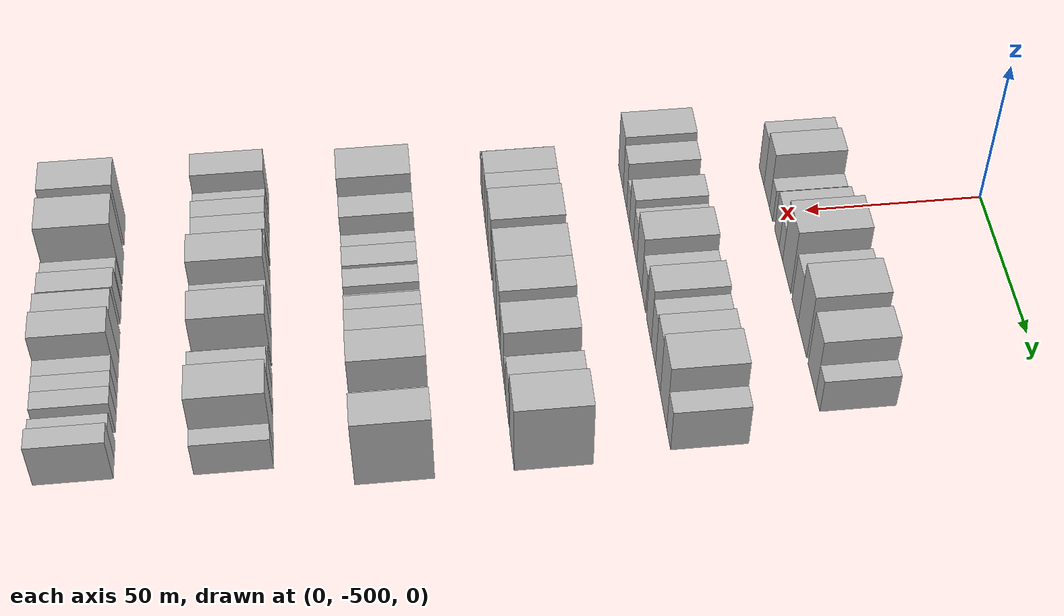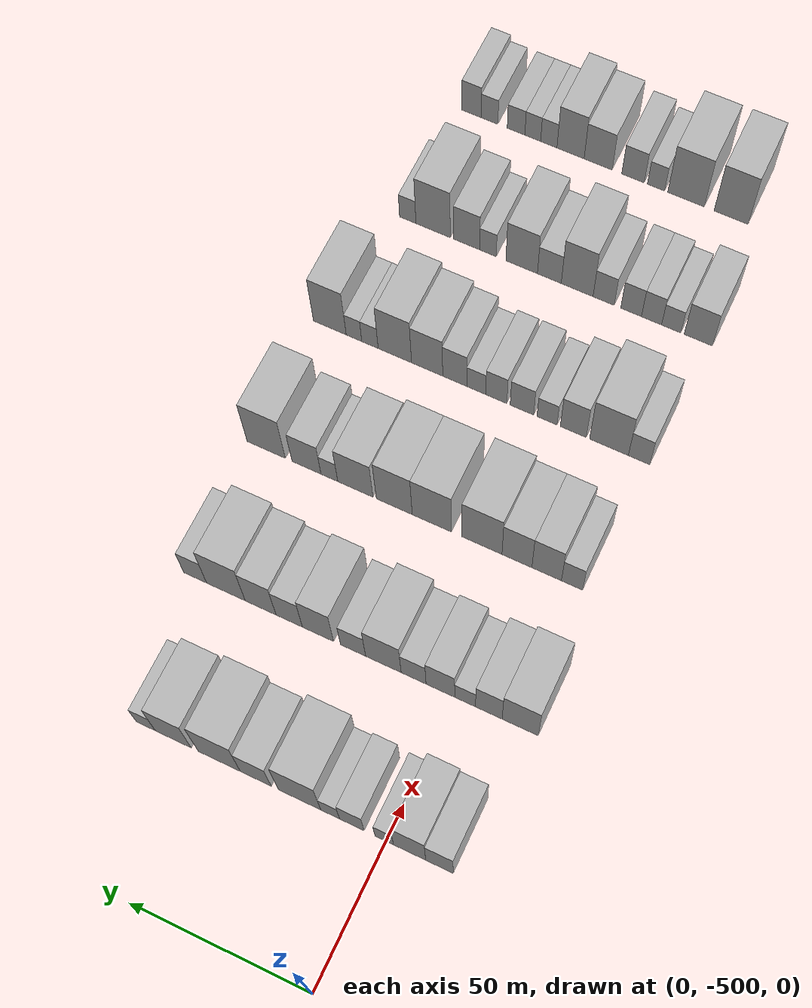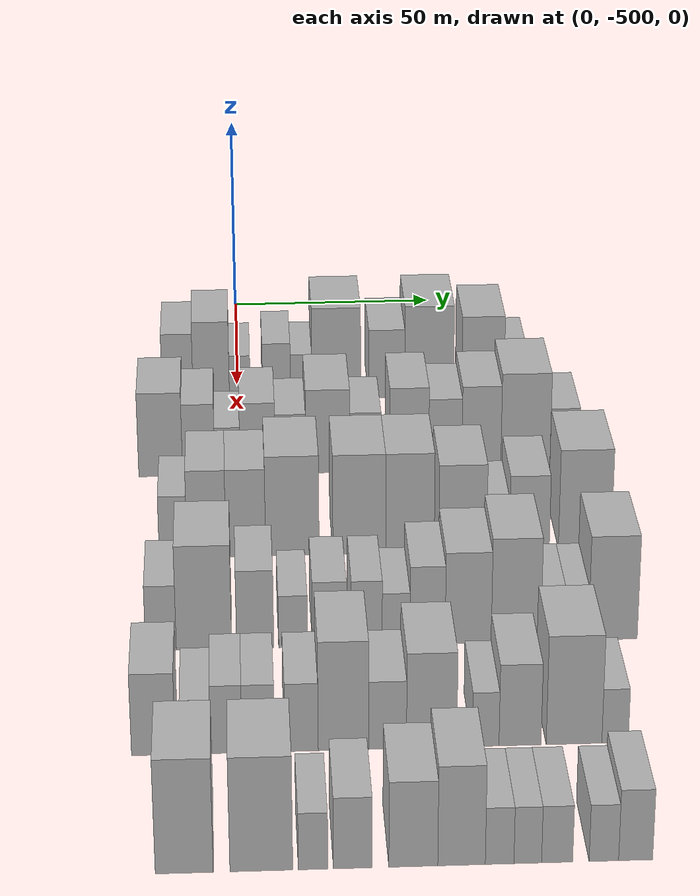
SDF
<sdf version="1.6">
 <world name="default">
  <model name="building_13">
   <static>1</static>
   <pose>50.0000 -514.4688 0 0.000000 0.000000 0.000000</pose>
   <link name="link">
    <pose>0 0 9.00 0 0 0</pose>
    <collision name="collision"><geometry><box><size>20.0000 7.4591 18.0000</size></box></geometry></collision>
    <visual name="visual">
     <cast_shadows>0</cast_shadows>
     <geometry><box><size>20.0000 7.4591 18.0000</size></box></geometry>
     <material>
      <script>
       <uri>model://HANNAS_wall/materials/scripts</uri>
       <uri>model://HANNAS_wall/materials/textures</uri>
       <name>vrc/HANNAS_wall</name>
      </script>
     </material>
    </visual>
   </link>
  </model>
  <model name="building_14">
   <static>1</static>
   <pose>50.0000 -506.3366 0 0.000000 0.000000 0.000000</pose>
   <link name="link">
    <pose>0 0 10.50 0 0 0</pose>
    <collision name="collision"><geometry><box><size>20.0000 8.8054 21.0000</size></box></geometry></collision>
    <visual name="visual">
     <cast_shadows>0</cast_shadows>
     <geometry><box><size>20.0000 8.8054 21.0000</size></box></geometry>
     <material>
      <script>
       <uri>model://HANNAS_wall/materials/scripts</uri>
       <uri>model://HANNAS_wall/materials/textures</uri>
       <name>vrc/HANNAS_wall</name>
      </script>
     </material>
    </visual>
   </link>
  </model>
  <model name="building_15">
   <static>1</static>
   <pose>50.0000 -499.4012 0 0.000000 0.000000 0.000000</pose>
   <link name="link">
    <pose>0 0 6.00 0 0 0</pose>
    <collision name="collision"><geometry><box><size>20.0000 5.0653 12.0000</size></box></geometry></collision>
    <visual name="visual">
     <cast_shadows>0</cast_shadows>
     <geometry><box><size>20.0000 5.0653 12.0000</size></box></geometry>
     <material>
      <script>
       <uri>model://HANNAS_wall/materials/scripts</uri>
       <uri>model://HANNAS_wall/materials/textures</uri>
       <name>vrc/HANNAS_wall</name>
      </script>
     </material>
    </visual>
   </link>
  </model>
  <model name="building_16">
   <static>1</static>
   <pose>50.0000 -490.4861 0 0.000000 0.000000 0.000000</pose>
   <link name="link">
    <pose>0 0 7.50 0 0 0</pose>
    <collision name="collision"><geometry><box><size>20.0000 6.7649 15.0000</size></box></geometry></collision>
    <visual name="visual">
     <cast_shadows>0</cast_shadows>
     <geometry><box><size>20.0000 6.7649 15.0000</size></box></geometry>
     <material>
      <script>
       <uri>model://HANNAS_wall/materials/scripts</uri>
       <uri>model://HANNAS_wall/materials/textures</uri>
       <name>vrc/HANNAS_wall</name>
      </script>
     </material>
    </visual>
   </link>
  </model>
  <model name="building_17">
   <static>1</static>
   <pose>50.0000 -484.4919 0 0.000000 0.000000 0.000000</pose>
   <link name="link">
    <pose>0 0 6.00 0 0 0</pose>
    <collision name="collision"><geometry><box><size>20.0000 5.2236 12.0000</size></box></geometry></collision>
    <visual name="visual">
     <cast_shadows>0</cast_shadows>
     <geometry><box><size>20.0000 5.2236 12.0000</size></box></geometry>
     <material>
      <script>
       <uri>model://HANNAS_wall/materials/scripts</uri>
       <uri>model://HANNAS_wall/materials/textures</uri>
       <name>vrc/HANNAS_wall</name>
      </script>
     </material>
    </visual>
   </link>
  </model>
  <model name="building_18">
   <static>1</static>
   <pose>50.0000 -475.9664 0 0.000000 0.000000 0.000000</pose>
   <link name="link">
    <pose>0 0 12.00 0 0 0</pose>
    <collision name="collision"><geometry><box><size>20.0000 11.8273 24.0000</size></box></geometry></collision>
    <visual name="visual">
     <cast_shadows>0</cast_shadows>
     <geometry><box><size>20.0000 11.8273 24.0000</size></box></geometry>
     <material>
      <script>
       <uri>model://HANNAS_wall/materials/scripts</uri>
       <uri>model://HANNAS_wall/materials/textures</uri>
       <name>vrc/HANNAS_wall</name>
      </script>
     </material>
    </visual>
   </link>
  </model>
  <model name="building_19">
   <static>1</static>
   <pose>50.0000 -463.6933 0 0.000000 0.000000 0.000000</pose>
   <link name="link">
    <pose>0 0 9.00 0 0 0</pose>
    <collision name="collision"><geometry><box><size>20.0000 8.7189 18.0000</size></box></geometry></collision>
    <visual name="visual">
     <cast_shadows>0</cast_shadows>
     <geometry><box><size>20.0000 8.7189 18.0000</size></box></geometry>
     <material>
      <script>
       <uri>model://HANNAS_wall/materials/scripts</uri>
       <uri>model://HANNAS_wall/materials/textures</uri>
       <name>vrc/HANNAS_wall</name>
      </script>
     </material>
    </visual>
   </link>
  </model>
  <model name="building_20">
   <static>1</static>
   <pose>50.0000 -453.3681 0 0.000000 0.000000 0.000000</pose>
   <link name="link">
    <pose>0 0 12.00 0 0 0</pose>
    <collision name="collision"><geometry><box><size>20.0000 11.9314 24.0000</size></box></geometry></collision>
    <visual name="visual">
     <cast_shadows>0</cast_shadows>
     <geometry><box><size>20.0000 11.9314 24.0000</size></box></geometry>
     <material>
      <script>
       <uri>model://HANNAS_wall/materials/scripts</uri>
       <uri>model://HANNAS_wall/materials/textures</uri>
       <name>vrc/HANNAS_wall</name>
      </script>
     </material>
    </visual>
   </link>
  </model>
  <model name="building_21">
   <static>1</static>
   <pose>50.0000 -440.2463 0 0.000000 0.000000 0.000000</pose>
   <link name="link">
    <pose>0 0 10.50 0 0 0</pose>
    <collision name="collision"><geometry><box><size>20.0000 10.3122 21.0000</size></box></geometry></collision>
    <visual name="visual">
     <cast_shadows>0</cast_shadows>
     <geometry><box><size>20.0000 10.3122 21.0000</size></box></geometry>
     <material>
      <script>
       <uri>model://HANNAS_wall/materials/scripts</uri>
       <uri>model://HANNAS_wall/materials/textures</uri>
       <name>vrc/HANNAS_wall</name>
      </script>
     </material>
    </visual>
   </link>
  </model>
  <model name="building_22">
   <static>1</static>
   <pose>50.0000 -432.3361 0 0.000000 0.000000 0.000000</pose>
   <link name="link">
    <pose>0 0 6.00 0 0 0</pose>
    <collision name="collision"><geometry><box><size>20.0000 5.5081 12.0000</size></box></geometry></collision>
    <visual name="visual">
     <cast_shadows>0</cast_shadows>
     <geometry><box><size>20.0000 5.5081 12.0000</size></box></geometry>
     <material>
      <script>
       <uri>model://HANNAS_wall/materials/scripts</uri>
       <uri>model://HANNAS_wall/materials/textures</uri>
       <name>vrc/HANNAS_wall</name>
      </script>
     </material>
    </visual>
   </link>
  </model>
  <model name="building_137">
   <static>1</static>
   <pose>90.0000 -517.9398 0 0.000000 0.000000 0.000000</pose>
   <link name="link">
    <pose>0 0 10.50 0 0 0</pose>
    <collision name="collision"><geometry><box><size>20.0000 10.0449 21.0000</size></box></geometry></collision>
    <visual name="visual">
     <cast_shadows>0</cast_shadows>
     <geometry><box><size>20.0000 10.0449 21.0000</size></box></geometry>
     <material>
      <script>
       <uri>model://HANNAS_wall/materials/scripts</uri>
       <uri>model://HANNAS_wall/materials/textures</uri>
       <name>vrc/HANNAS_wall</name>
      </script>
     </material>
    </visual>
   </link>
  </model>
  <model name="building_138">
   <static>1</static>
   <pose>90.0000 -509.2058 0 0.000000 0.000000 0.000000</pose>
   <link name="link">
    <pose>0 0 9.00 0 0 0</pose>
    <collision name="collision"><geometry><box><size>20.0000 7.4230 18.0000</size></box></geometry></collision>
    <visual name="visual">
     <cast_shadows>0</cast_shadows>
     <geometry><box><size>20.0000 7.4230 18.0000</size></box></geometry>
     <material>
      <script>
       <uri>model://HANNAS_wall/materials/scripts</uri>
       <uri>model://HANNAS_wall/materials/textures</uri>
       <name>vrc/HANNAS_wall</name>
      </script>
     </material>
    </visual>
   </link>
  </model>
  <model name="building_139">
   <static>1</static>
   <pose>90.0000 -502.5907 0 0.000000 0.000000 0.000000</pose>
   <link name="link">
    <pose>0 0 6.00 0 0 0</pose>
    <collision name="collision"><geometry><box><size>20.0000 5.8072 12.0000</size></box></geometry></collision>
    <visual name="visual">
     <cast_shadows>0</cast_shadows>
     <geometry><box><size>20.0000 5.8072 12.0000</size></box></geometry>
     <material>
      <script>
       <uri>model://HANNAS_wall/materials/scripts</uri>
       <uri>model://HANNAS_wall/materials/textures</uri>
       <name>vrc/HANNAS_wall</name>
      </script>
     </material>
    </visual>
   </link>
  </model>
  <model name="building_140">
   <static>1</static>
   <pose>90.0000 -495.6483 0 0.000000 0.000000 0.000000</pose>
   <link name="link">
    <pose>0 0 9.00 0 0 0</pose>
    <collision name="collision"><geometry><box><size>20.0000 8.0774 18.0000</size></box></geometry></collision>
    <visual name="visual">
     <cast_shadows>0</cast_shadows>
     <geometry><box><size>20.0000 8.0774 18.0000</size></box></geometry>
     <material>
      <script>
       <uri>model://HANNAS_wall/materials/scripts</uri>
       <uri>model://HANNAS_wall/materials/textures</uri>
       <name>vrc/HANNAS_wall</name>
      </script>
     </material>
    </visual>
   </link>
  </model>
  <model name="building_141">
   <static>1</static>
   <pose>90.0000 -488.0725 0 0.000000 0.000000 0.000000</pose>
   <link name="link">
    <pose>0 0 7.50 0 0 0</pose>
    <collision name="collision"><geometry><box><size>20.0000 7.0742 15.0000</size></box></geometry></collision>
    <visual name="visual">
     <cast_shadows>0</cast_shadows>
     <geometry><box><size>20.0000 7.0742 15.0000</size></box></geometry>
     <material>
      <script>
       <uri>model://HANNAS_wall/materials/scripts</uri>
       <uri>model://HANNAS_wall/materials/textures</uri>
       <name>vrc/HANNAS_wall</name>
      </script>
     </material>
    </visual>
   </link>
  </model>
  <model name="building_142">
   <static>1</static>
   <pose>90.0000 -479.4737 0 0.000000 0.000000 0.000000</pose>
   <link name="link">
    <pose>0 0 10.50 0 0 0</pose>
    <collision name="collision"><geometry><box><size>20.0000 10.1234 21.0000</size></box></geometry></collision>
    <visual name="visual">
     <cast_shadows>0</cast_shadows>
     <geometry><box><size>20.0000 10.1234 21.0000</size></box></geometry>
     <material>
      <script>
       <uri>model://HANNAS_wall/materials/scripts</uri>
       <uri>model://HANNAS_wall/materials/textures</uri>
       <name>vrc/HANNAS_wall</name>
      </script>
     </material>
    </visual>
   </link>
  </model>
  <model name="building_143">
   <static>1</static>
   <pose>90.0000 -470.8047 0 0.000000 0.000000 0.000000</pose>
   <link name="link">
    <pose>0 0 7.50 0 0 0</pose>
    <collision name="collision"><geometry><box><size>20.0000 7.2146 15.0000</size></box></geometry></collision>
    <visual name="visual">
     <cast_shadows>0</cast_shadows>
     <geometry><box><size>20.0000 7.2146 15.0000</size></box></geometry>
     <material>
      <script>
       <uri>model://HANNAS_wall/materials/scripts</uri>
       <uri>model://HANNAS_wall/materials/textures</uri>
       <name>vrc/HANNAS_wall</name>
      </script>
     </material>
    </visual>
   </link>
  </model>
  <model name="building_144">
   <static>1</static>
   <pose>90.0000 -460.6954 0 0.000000 0.000000 0.000000</pose>
   <link name="link">
    <pose>0 0 10.50 0 0 0</pose>
    <collision name="collision"><geometry><box><size>20.0000 9.0041 21.0000</size></box></geometry></collision>
    <visual name="visual">
     <cast_shadows>0</cast_shadows>
     <geometry><box><size>20.0000 9.0041 21.0000</size></box></geometry>
     <material>
      <script>
       <uri>model://HANNAS_wall/materials/scripts</uri>
       <uri>model://HANNAS_wall/materials/textures</uri>
       <name>vrc/HANNAS_wall</name>
      </script>
     </material>
    </visual>
   </link>
  </model>
  <model name="building_145">
   <static>1</static>
   <pose>90.0000 -452.3557 0 0.000000 0.000000 0.000000</pose>
   <link name="link">
    <pose>0 0 9.00 0 0 0</pose>
    <collision name="collision"><geometry><box><size>20.0000 7.6752 18.0000</size></box></geometry></collision>
    <visual name="visual">
     <cast_shadows>0</cast_shadows>
     <geometry><box><size>20.0000 7.6752 18.0000</size></box></geometry>
     <material>
      <script>
       <uri>model://HANNAS_wall/materials/scripts</uri>
       <uri>model://HANNAS_wall/materials/textures</uri>
       <name>vrc/HANNAS_wall</name>
      </script>
     </material>
    </visual>
   </link>
  </model>
  <model name="building_146">
   <static>1</static>
   <pose>90.0000 -444.0060 0 0.000000 0.000000 0.000000</pose>
   <link name="link">
    <pose>0 0 10.50 0 0 0</pose>
    <collision name="collision"><geometry><box><size>20.0000 9.0243 21.0000</size></box></geometry></collision>
    <visual name="visual">
     <cast_shadows>0</cast_shadows>
     <geometry><box><size>20.0000 9.0243 21.0000</size></box></geometry>
     <material>
      <script>
       <uri>model://HANNAS_wall/materials/scripts</uri>
       <uri>model://HANNAS_wall/materials/textures</uri>
       <name>vrc/HANNAS_wall</name>
      </script>
     </material>
    </visual>
   </link>
  </model>
  <model name="building_147">
   <static>1</static>
   <pose>90.0000 -433.7971 0 0.000000 0.000000 0.000000</pose>
   <link name="link">
    <pose>0 0 12.00 0 0 0</pose>
    <collision name="collision"><geometry><box><size>20.0000 11.3937 24.0000</size></box></geometry></collision>
    <visual name="visual">
     <cast_shadows>0</cast_shadows>
     <geometry><box><size>20.0000 11.3937 24.0000</size></box></geometry>
     <material>
      <script>
       <uri>model://HANNAS_wall/materials/scripts</uri>
       <uri>model://HANNAS_wall/materials/textures</uri>
       <name>vrc/HANNAS_wall</name>
      </script>
     </material>
    </visual>
   </link>
  </model>
  <model name="building_148">
   <static>1</static>
   <pose>90.0000 -424.7133 0 0.000000 0.000000 0.000000</pose>
   <link name="link">
    <pose>0 0 7.50 0 0 0</pose>
    <collision name="collision"><geometry><box><size>20.0000 6.7739 15.0000</size></box></geometry></collision>
    <visual name="visual">
     <cast_shadows>0</cast_shadows>
     <geometry><box><size>20.0000 6.7739 15.0000</size></box></geometry>
     <material>
      <script>
       <uri>model://HANNAS_wall/materials/scripts</uri>
       <uri>model://HANNAS_wall/materials/textures</uri>
       <name>vrc/HANNAS_wall</name>
      </script>
     </material>
    </visual>
   </link>
  </model>
  <model name="building_272">
   <static>1</static>
   <pose>130.0000 -514.5746 0 0.000000 0.000000 0.000000</pose>
   <link name="link">
    <pose>0 0 7.50 0 0 0</pose>
    <collision name="collision"><geometry><box><size>20.0000 6.0504 15.0000</size></box></geometry></collision>
    <visual name="visual">
     <cast_shadows>0</cast_shadows>
     <geometry><box><size>20.0000 6.0504 15.0000</size></box></geometry>
     <material>
      <script>
       <uri>model://HANNAS_wall/materials/scripts</uri>
       <uri>model://HANNAS_wall/materials/textures</uri>
       <name>vrc/HANNAS_wall</name>
      </script>
     </material>
    </visual>
   </link>
  </model>
  <model name="building_273">
   <static>1</static>
   <pose>130.0000 -507.3197 0 0.000000 0.000000 0.000000</pose>
   <link name="link">
    <pose>0 0 10.50 0 0 0</pose>
    <collision name="collision"><geometry><box><size>20.0000 8.4594 21.0000</size></box></geometry></collision>
    <visual name="visual">
     <cast_shadows>0</cast_shadows>
     <geometry><box><size>20.0000 8.4594 21.0000</size></box></geometry>
     <material>
      <script>
       <uri>model://HANNAS_wall/materials/scripts</uri>
       <uri>model://HANNAS_wall/materials/textures</uri>
       <name>vrc/HANNAS_wall</name>
      </script>
     </material>
    </visual>
   </link>
  </model>
  <model name="building_274">
   <static>1</static>
   <pose>130.0000 -498.7844 0 0.000000 0.000000 0.000000</pose>
   <link name="link">
    <pose>0 0 10.50 0 0 0</pose>
    <collision name="collision"><geometry><box><size>20.0000 8.6112 21.0000</size></box></geometry></collision>
    <visual name="visual">
     <cast_shadows>0</cast_shadows>
     <geometry><box><size>20.0000 8.6112 21.0000</size></box></geometry>
     <material>
      <script>
       <uri>model://HANNAS_wall/materials/scripts</uri>
       <uri>model://HANNAS_wall/materials/textures</uri>
       <name>vrc/HANNAS_wall</name>
      </script>
     </material>
    </visual>
   </link>
  </model>
  <model name="building_275">
   <static>1</static>
   <pose>130.0000 -488.6495 0 0.000000 0.000000 0.000000</pose>
   <link name="link">
    <pose>0 0 12.00 0 0 0</pose>
    <collision name="collision"><geometry><box><size>20.0000 11.6587 24.0000</size></box></geometry></collision>
    <visual name="visual">
     <cast_shadows>0</cast_shadows>
     <geometry><box><size>20.0000 11.6587 24.0000</size></box></geometry>
     <material>
      <script>
       <uri>model://HANNAS_wall/materials/scripts</uri>
       <uri>model://HANNAS_wall/materials/textures</uri>
       <name>vrc/HANNAS_wall</name>
      </script>
     </material>
    </visual>
   </link>
  </model>
  <model name="building_276">
   <static>1</static>
   <pose>130.0000 -474.0679 0 0.000000 0.000000 0.000000</pose>
   <link name="link">
    <pose>0 0 12.00 0 0 0</pose>
    <collision name="collision"><geometry><box><size>20.0000 11.5045 24.0000</size></box></geometry></collision>
    <visual name="visual">
     <cast_shadows>0</cast_shadows>
     <geometry><box><size>20.0000 11.5045 24.0000</size></box></geometry>
     <material>
      <script>
       <uri>model://HANNAS_wall/materials/scripts</uri>
       <uri>model://HANNAS_wall/materials/textures</uri>
       <name>vrc/HANNAS_wall</name>
      </script>
     </material>
    </visual>
   </link>
  </model>
  <model name="building_277">
   <static>1</static>
   <pose>130.0000 -463.0103 0 0.000000 0.000000 0.000000</pose>
   <link name="link">
    <pose>0 0 12.00 0 0 0</pose>
    <collision name="collision"><geometry><box><size>20.0000 10.6107 24.0000</size></box></geometry></collision>
    <visual name="visual">
     <cast_shadows>0</cast_shadows>
     <geometry><box><size>20.0000 10.6107 24.0000</size></box></geometry>
     <material>
      <script>
       <uri>model://HANNAS_wall/materials/scripts</uri>
       <uri>model://HANNAS_wall/materials/textures</uri>
       <name>vrc/HANNAS_wall</name>
      </script>
     </material>
    </visual>
   </link>
  </model>
  <model name="building_278">
   <static>1</static>
   <pose>130.0000 -451.4635 0 0.000000 0.000000 0.000000</pose>
   <link name="link">
    <pose>0 0 10.50 0 0 0</pose>
    <collision name="collision"><geometry><box><size>20.0000 10.4829 21.0000</size></box></geometry></collision>
    <visual name="visual">
     <cast_shadows>0</cast_shadows>
     <geometry><box><size>20.0000 10.4829 21.0000</size></box></geometry>
     <material>
      <script>
       <uri>model://HANNAS_wall/materials/scripts</uri>
       <uri>model://HANNAS_wall/materials/textures</uri>
       <name>vrc/HANNAS_wall</name>
      </script>
     </material>
    </visual>
   </link>
  </model>
  <model name="building_279">
   <static>1</static>
   <pose>130.0000 -443.7158 0 0.000000 0.000000 0.000000</pose>
   <link name="link">
    <pose>0 0 6.00 0 0 0</pose>
    <collision name="collision"><geometry><box><size>20.0000 5.0125 12.0000</size></box></geometry></collision>
    <visual name="visual">
     <cast_shadows>0</cast_shadows>
     <geometry><box><size>20.0000 5.0125 12.0000</size></box></geometry>
     <material>
      <script>
       <uri>model://HANNAS_wall/materials/scripts</uri>
       <uri>model://HANNAS_wall/materials/textures</uri>
       <name>vrc/HANNAS_wall</name>
      </script>
     </material>
    </visual>
   </link>
  </model>
  <model name="building_280">
   <static>1</static>
   <pose>130.0000 -436.8410 0 0.000000 0.000000 0.000000</pose>
   <link name="link">
    <pose>0 0 9.00 0 0 0</pose>
    <collision name="collision"><geometry><box><size>20.0000 8.7371 18.0000</size></box></geometry></collision>
    <visual name="visual">
     <cast_shadows>0</cast_shadows>
     <geometry><box><size>20.0000 8.7371 18.0000</size></box></geometry>
     <material>
      <script>
       <uri>model://HANNAS_wall/materials/scripts</uri>
       <uri>model://HANNAS_wall/materials/textures</uri>
       <name>vrc/HANNAS_wall</name>
      </script>
     </material>
    </visual>
   </link>
  </model>
  <model name="building_281">
   <static>1</static>
   <pose>130.0000 -424.6730 0 0.000000 0.000000 0.000000</pose>
   <link name="link">
    <pose>0 0 12.00 0 0 0</pose>
    <collision name="collision"><geometry><box><size>20.0000 11.5989 24.0000</size></box></geometry></collision>
    <visual name="visual">
     <cast_shadows>0</cast_shadows>
     <geometry><box><size>20.0000 11.5989 24.0000</size></box></geometry>
     <material>
      <script>
       <uri>model://HANNAS_wall/materials/scripts</uri>
       <uri>model://HANNAS_wall/materials/textures</uri>
       <name>vrc/HANNAS_wall</name>
      </script>
     </material>
    </visual>
   </link>
  </model>
  <model name="building_409">
   <static>1</static>
   <pose>170.0000 -516.5930 0 0.000000 0.000000 0.000000</pose>
   <link name="link">
    <pose>0 0 7.50 0 0 0</pose>
    <collision name="collision"><geometry><box><size>20.0000 6.2789 15.0000</size></box></geometry></collision>
    <visual name="visual">
     <cast_shadows>0</cast_shadows>
     <geometry><box><size>20.0000 6.2789 15.0000</size></box></geometry>
     <material>
      <script>
       <uri>model://HANNAS_wall/materials/scripts</uri>
       <uri>model://HANNAS_wall/materials/textures</uri>
       <name>vrc/HANNAS_wall</name>
      </script>
     </material>
    </visual>
   </link>
  </model>
  <model name="building_410">
   <static>1</static>
   <pose>170.0000 -507.7788 0 0.000000 0.000000 0.000000</pose>
   <link name="link">
    <pose>0 0 12.00 0 0 0</pose>
    <collision name="collision"><geometry><box><size>20.0000 11.3495 24.0000</size></box></geometry></collision>
    <visual name="visual">
     <cast_shadows>0</cast_shadows>
     <geometry><box><size>20.0000 11.3495 24.0000</size></box></geometry>
     <material>
      <script>
       <uri>model://HANNAS_wall/materials/scripts</uri>
       <uri>model://HANNAS_wall/materials/textures</uri>
       <name>vrc/HANNAS_wall</name>
      </script>
     </material>
    </visual>
   </link>
  </model>
  <model name="building_411">
   <static>1</static>
   <pose>170.0000 -497.2859 0 0.000000 0.000000 0.000000</pose>
   <link name="link">
    <pose>0 0 9.00 0 0 0</pose>
    <collision name="collision"><geometry><box><size>20.0000 7.6362 18.0000</size></box></geometry></collision>
    <visual name="visual">
     <cast_shadows>0</cast_shadows>
     <geometry><box><size>20.0000 7.6362 18.0000</size></box></geometry>
     <material>
      <script>
       <uri>model://HANNAS_wall/materials/scripts</uri>
       <uri>model://HANNAS_wall/materials/textures</uri>
       <name>vrc/HANNAS_wall</name>
      </script>
     </material>
    </visual>
   </link>
  </model>
  <model name="building_412">
   <static>1</static>
   <pose>170.0000 -489.5038 0 0.000000 0.000000 0.000000</pose>
   <link name="link">
    <pose>0 0 6.00 0 0 0</pose>
    <collision name="collision"><geometry><box><size>20.0000 5.9280 12.0000</size></box></geometry></collision>
    <visual name="visual">
     <cast_shadows>0</cast_shadows>
     <geometry><box><size>20.0000 5.9280 12.0000</size></box></geometry>
     <material>
      <script>
       <uri>model://HANNAS_wall/materials/scripts</uri>
       <uri>model://HANNAS_wall/materials/textures</uri>
       <name>vrc/HANNAS_wall</name>
      </script>
     </material>
    </visual>
   </link>
  </model>
  <model name="building_413">
   <static>1</static>
   <pose>170.0000 -482.0340 0 0.000000 0.000000 0.000000</pose>
   <link name="link">
    <pose>0 0 7.50 0 0 0</pose>
    <collision name="collision"><geometry><box><size>20.0000 7.0117 15.0000</size></box></geometry></collision>
    <visual name="visual">
     <cast_shadows>0</cast_shadows>
     <geometry><box><size>20.0000 7.0117 15.0000</size></box></geometry>
     <material>
      <script>
       <uri>model://HANNAS_wall/materials/scripts</uri>
       <uri>model://HANNAS_wall/materials/textures</uri>
       <name>vrc/HANNAS_wall</name>
      </script>
     </material>
    </visual>
   </link>
  </model>
  <model name="building_414">
   <static>1</static>
   <pose>170.0000 -474.3598 0 0.000000 0.000000 0.000000</pose>
   <link name="link">
    <pose>0 0 7.50 0 0 0</pose>
    <collision name="collision"><geometry><box><size>20.0000 6.3367 15.0000</size></box></geometry></collision>
    <visual name="visual">
     <cast_shadows>0</cast_shadows>
     <geometry><box><size>20.0000 6.3367 15.0000</size></box></geometry>
     <material>
      <script>
       <uri>model://HANNAS_wall/materials/scripts</uri>
       <uri>model://HANNAS_wall/materials/textures</uri>
       <name>vrc/HANNAS_wall</name>
      </script>
     </material>
    </visual>
   </link>
  </model>
  <model name="building_415">
   <static>1</static>
   <pose>170.0000 -468.3351 0 0.000000 0.000000 0.000000</pose>
   <link name="link">
    <pose>0 0 6.00 0 0 0</pose>
    <collision name="collision"><geometry><box><size>20.0000 5.7128 12.0000</size></box></geometry></collision>
    <visual name="visual">
     <cast_shadows>0</cast_shadows>
     <geometry><box><size>20.0000 5.7128 12.0000</size></box></geometry>
     <material>
      <script>
       <uri>model://HANNAS_wall/materials/scripts</uri>
       <uri>model://HANNAS_wall/materials/textures</uri>
       <name>vrc/HANNAS_wall</name>
      </script>
     </material>
    </visual>
   </link>
  </model>
  <model name="building_416">
   <static>1</static>
   <pose>170.0000 -461.8528 0 0.000000 0.000000 0.000000</pose>
   <link name="link">
    <pose>0 0 9.00 0 0 0</pose>
    <collision name="collision"><geometry><box><size>20.0000 7.2517 18.0000</size></box></geometry></collision>
    <visual name="visual">
     <cast_shadows>0</cast_shadows>
     <geometry><box><size>20.0000 7.2517 18.0000</size></box></geometry>
     <material>
      <script>
       <uri>model://HANNAS_wall/materials/scripts</uri>
       <uri>model://HANNAS_wall/materials/textures</uri>
       <name>vrc/HANNAS_wall</name>
      </script>
     </material>
    </visual>
   </link>
  </model>
  <model name="building_417">
   <static>1</static>
   <pose>170.0000 -453.4729 0 0.000000 0.000000 0.000000</pose>
   <link name="link">
    <pose>0 0 10.50 0 0 0</pose>
    <collision name="collision"><geometry><box><size>20.0000 9.5080 21.0000</size></box></geometry></collision>
    <visual name="visual">
     <cast_shadows>0</cast_shadows>
     <geometry><box><size>20.0000 9.5080 21.0000</size></box></geometry>
     <material>
      <script>
       <uri>model://HANNAS_wall/materials/scripts</uri>
       <uri>model://HANNAS_wall/materials/textures</uri>
       <name>vrc/HANNAS_wall</name>
      </script>
     </material>
    </visual>
   </link>
  </model>
  <model name="building_418">
   <static>1</static>
   <pose>170.0000 -443.6068 0 0.000000 0.000000 0.000000</pose>
   <link name="link">
    <pose>0 0 12.00 0 0 0</pose>
    <collision name="collision"><geometry><box><size>20.0000 10.2244 24.0000</size></box></geometry></collision>
    <visual name="visual">
     <cast_shadows>0</cast_shadows>
     <geometry><box><size>20.0000 10.2244 24.0000</size></box></geometry>
     <material>
      <script>
       <uri>model://HANNAS_wall/materials/scripts</uri>
       <uri>model://HANNAS_wall/materials/textures</uri>
       <name>vrc/HANNAS_wall</name>
      </script>
     </material>
    </visual>
   </link>
  </model>
  <model name="building_419">
   <static>1</static>
   <pose>170.0000 -435.9770 0 0.000000 0.000000 0.000000</pose>
   <link name="link">
    <pose>0 0 6.00 0 0 0</pose>
    <collision name="collision"><geometry><box><size>20.0000 5.0351 12.0000</size></box></geometry></collision>
    <visual name="visual">
     <cast_shadows>0</cast_shadows>
     <geometry><box><size>20.0000 5.0351 12.0000</size></box></geometry>
     <material>
      <script>
       <uri>model://HANNAS_wall/materials/scripts</uri>
       <uri>model://HANNAS_wall/materials/textures</uri>
       <name>vrc/HANNAS_wall</name>
      </script>
     </material>
    </visual>
   </link>
  </model>
  <model name="building_420">
   <static>1</static>
   <pose>170.0000 -431.0493 0 0.000000 0.000000 0.000000</pose>
   <link name="link">
    <pose>0 0 6.00 0 0 0</pose>
    <collision name="collision"><geometry><box><size>20.0000 4.8204 12.0000</size></box></geometry></collision>
    <visual name="visual">
     <cast_shadows>0</cast_shadows>
     <geometry><box><size>20.0000 4.8204 12.0000</size></box></geometry>
     <material>
      <script>
       <uri>model://HANNAS_wall/materials/scripts</uri>
       <uri>model://HANNAS_wall/materials/textures</uri>
       <name>vrc/HANNAS_wall</name>
      </script>
     </material>
    </visual>
   </link>
  </model>
  <model name="building_421">
   <static>1</static>
   <pose>170.0000 -423.5658 0 0.000000 0.000000 0.000000</pose>
   <link name="link">
    <pose>0 0 12.00 0 0 0</pose>
    <collision name="collision"><geometry><box><size>20.0000 10.1465 24.0000</size></box></geometry></collision>
    <visual name="visual">
     <cast_shadows>0</cast_shadows>
     <geometry><box><size>20.0000 10.1465 24.0000</size></box></geometry>
     <material>
      <script>
       <uri>model://HANNAS_wall/materials/scripts</uri>
       <uri>model://HANNAS_wall/materials/textures</uri>
       <name>vrc/HANNAS_wall</name>
      </script>
     </material>
    </visual>
   </link>
  </model>
  <model name="building_551">
   <static>1</static>
   <pose>210.0000 -517.3816 0 0.000000 0.000000 0.000000</pose>
   <link name="link">
    <pose>0 0 9.00 0 0 0</pose>
    <collision name="collision"><geometry><box><size>20.0000 8.4225 18.0000</size></box></geometry></collision>
    <visual name="visual">
     <cast_shadows>0</cast_shadows>
     <geometry><box><size>20.0000 8.4225 18.0000</size></box></geometry>
     <material>
      <script>
       <uri>model://HANNAS_wall/materials/scripts</uri>
       <uri>model://HANNAS_wall/materials/textures</uri>
       <name>vrc/HANNAS_wall</name>
      </script>
     </material>
    </visual>
   </link>
  </model>
  <model name="building_552">
   <static>1</static>
   <pose>210.0000 -509.2824 0 0.000000 0.000000 0.000000</pose>
   <link name="link">
    <pose>0 0 6.00 0 0 0</pose>
    <collision name="collision"><geometry><box><size>20.0000 5.7760 12.0000</size></box></geometry></collision>
    <visual name="visual">
     <cast_shadows>0</cast_shadows>
     <geometry><box><size>20.0000 5.7760 12.0000</size></box></geometry>
     <material>
      <script>
       <uri>model://HANNAS_wall/materials/scripts</uri>
       <uri>model://HANNAS_wall/materials/textures</uri>
       <name>vrc/HANNAS_wall</name>
      </script>
     </material>
    </visual>
   </link>
  </model>
  <model name="building_553">
   <static>1</static>
   <pose>210.0000 -503.3649 0 0.000000 0.000000 0.000000</pose>
   <link name="link">
    <pose>0 0 7.50 0 0 0</pose>
    <collision name="collision"><geometry><box><size>20.0000 6.0590 15.0000</size></box></geometry></collision>
    <visual name="visual">
     <cast_shadows>0</cast_shadows>
     <geometry><box><size>20.0000 6.0590 15.0000</size></box></geometry>
     <material>
      <script>
       <uri>model://HANNAS_wall/materials/scripts</uri>
       <uri>model://HANNAS_wall/materials/textures</uri>
       <name>vrc/HANNAS_wall</name>
      </script>
     </material>
    </visual>
   </link>
  </model>
  <model name="building_554">
   <static>1</static>
   <pose>210.0000 -497.2123 0 0.000000 0.000000 0.000000</pose>
   <link name="link">
    <pose>0 0 7.50 0 0 0</pose>
    <collision name="collision"><geometry><box><size>20.0000 6.2461 15.0000</size></box></geometry></collision>
    <visual name="visual">
     <cast_shadows>0</cast_shadows>
     <geometry><box><size>20.0000 6.2461 15.0000</size></box></geometry>
     <material>
      <script>
       <uri>model://HANNAS_wall/materials/scripts</uri>
       <uri>model://HANNAS_wall/materials/textures</uri>
       <name>vrc/HANNAS_wall</name>
      </script>
     </material>
    </visual>
   </link>
  </model>
  <model name="building_555">
   <static>1</static>
   <pose>210.0000 -488.8835 0 0.000000 0.000000 0.000000</pose>
   <link name="link">
    <pose>0 0 7.50 0 0 0</pose>
    <collision name="collision"><geometry><box><size>20.0000 6.4115 15.0000</size></box></geometry></collision>
    <visual name="visual">
     <cast_shadows>0</cast_shadows>
     <geometry><box><size>20.0000 6.4115 15.0000</size></box></geometry>
     <material>
      <script>
       <uri>model://HANNAS_wall/materials/scripts</uri>
       <uri>model://HANNAS_wall/materials/textures</uri>
       <name>vrc/HANNAS_wall</name>
      </script>
     </material>
    </visual>
   </link>
  </model>
  <model name="building_556">
   <static>1</static>
   <pose>210.0000 -480.8040 0 0.000000 0.000000 0.000000</pose>
   <link name="link">
    <pose>0 0 12.00 0 0 0</pose>
    <collision name="collision"><geometry><box><size>20.0000 9.7474 24.0000</size></box></geometry></collision>
    <visual name="visual">
     <cast_shadows>0</cast_shadows>
     <geometry><box><size>20.0000 9.7474 24.0000</size></box></geometry>
     <material>
      <script>
       <uri>model://HANNAS_wall/materials/scripts</uri>
       <uri>model://HANNAS_wall/materials/textures</uri>
       <name>vrc/HANNAS_wall</name>
      </script>
     </material>
    </visual>
   </link>
  </model>
  <model name="building_557">
   <static>1</static>
   <pose>210.0000 -472.2797 0 0.000000 0.000000 0.000000</pose>
   <link name="link">
    <pose>0 0 7.50 0 0 0</pose>
    <collision name="collision"><geometry><box><size>20.0000 7.3012 15.0000</size></box></geometry></collision>
    <visual name="visual">
     <cast_shadows>0</cast_shadows>
     <geometry><box><size>20.0000 7.3012 15.0000</size></box></geometry>
     <material>
      <script>
       <uri>model://HANNAS_wall/materials/scripts</uri>
       <uri>model://HANNAS_wall/materials/textures</uri>
       <name>vrc/HANNAS_wall</name>
      </script>
     </material>
    </visual>
   </link>
  </model>
  <model name="building_558">
   <static>1</static>
   <pose>210.0000 -463.7635 0 0.000000 0.000000 0.000000</pose>
   <link name="link">
    <pose>0 0 10.50 0 0 0</pose>
    <collision name="collision"><geometry><box><size>20.0000 9.7312 21.0000</size></box></geometry></collision>
    <visual name="visual">
     <cast_shadows>0</cast_shadows>
     <geometry><box><size>20.0000 9.7312 21.0000</size></box></geometry>
     <material>
      <script>
       <uri>model://HANNAS_wall/materials/scripts</uri>
       <uri>model://HANNAS_wall/materials/textures</uri>
       <name>vrc/HANNAS_wall</name>
      </script>
     </material>
    </visual>
   </link>
  </model>
  <model name="building_559">
   <static>1</static>
   <pose>210.0000 -453.3117 0 0.000000 0.000000 0.000000</pose>
   <link name="link">
    <pose>0 0 6.00 0 0 0</pose>
    <collision name="collision"><geometry><box><size>20.0000 5.1724 12.0000</size></box></geometry></collision>
    <visual name="visual">
     <cast_shadows>0</cast_shadows>
     <geometry><box><size>20.0000 5.1724 12.0000</size></box></geometry>
     <material>
      <script>
       <uri>model://HANNAS_wall/materials/scripts</uri>
       <uri>model://HANNAS_wall/materials/textures</uri>
       <name>vrc/HANNAS_wall</name>
      </script>
     </material>
    </visual>
   </link>
  </model>
  <model name="building_560">
   <static>1</static>
   <pose>210.0000 -446.6397 0 0.000000 0.000000 0.000000</pose>
   <link name="link">
    <pose>0 0 9.00 0 0 0</pose>
    <collision name="collision"><geometry><box><size>20.0000 8.1715 18.0000</size></box></geometry></collision>
    <visual name="visual">
     <cast_shadows>0</cast_shadows>
     <geometry><box><size>20.0000 8.1715 18.0000</size></box></geometry>
     <material>
      <script>
       <uri>model://HANNAS_wall/materials/scripts</uri>
       <uri>model://HANNAS_wall/materials/textures</uri>
       <name>vrc/HANNAS_wall</name>
      </script>
     </material>
    </visual>
   </link>
  </model>
  <model name="building_561">
   <static>1</static>
   <pose>210.0000 -436.1431 0 0.000000 0.000000 0.000000</pose>
   <link name="link">
    <pose>0 0 12.00 0 0 0</pose>
    <collision name="collision"><geometry><box><size>20.0000 10.8218 24.0000</size></box></geometry></collision>
    <visual name="visual">
     <cast_shadows>0</cast_shadows>
     <geometry><box><size>20.0000 10.8218 24.0000</size></box></geometry>
     <material>
      <script>
       <uri>model://HANNAS_wall/materials/scripts</uri>
       <uri>model://HANNAS_wall/materials/textures</uri>
       <name>vrc/HANNAS_wall</name>
      </script>
     </material>
    </visual>
   </link>
  </model>
  <model name="building_562">
   <static>1</static>
   <pose>210.0000 -428.1578 0 0.000000 0.000000 0.000000</pose>
   <link name="link">
    <pose>0 0 6.00 0 0 0</pose>
    <collision name="collision"><geometry><box><size>20.0000 5.1488 12.0000</size></box></geometry></collision>
    <visual name="visual">
     <cast_shadows>0</cast_shadows>
     <geometry><box><size>20.0000 5.1488 12.0000</size></box></geometry>
     <material>
      <script>
       <uri>model://HANNAS_wall/materials/scripts</uri>
       <uri>model://HANNAS_wall/materials/textures</uri>
       <name>vrc/HANNAS_wall</name>
      </script>
     </material>
    </visual>
   </link>
  </model>
  <model name="building_690">
   <static>1</static>
   <pose>250.0000 -511.1196 0 0.000000 0.000000 0.000000</pose>
   <link name="link">
    <pose>0 0 12.00 0 0 0</pose>
    <collision name="collision"><geometry><box><size>20.0000 10.4130 24.0000</size></box></geometry></collision>
    <visual name="visual">
     <cast_shadows>0</cast_shadows>
     <geometry><box><size>20.0000 10.4130 24.0000</size></box></geometry>
     <material>
      <script>
       <uri>model://HANNAS_wall/materials/scripts</uri>
       <uri>model://HANNAS_wall/materials/textures</uri>
       <name>vrc/HANNAS_wall</name>
      </script>
     </material>
    </visual>
   </link>
  </model>
  <model name="building_691">
   <static>1</static>
   <pose>250.0000 -497.2531 0 0.000000 0.000000 0.000000</pose>
   <link name="link">
    <pose>0 0 12.00 0 0 0</pose>
    <collision name="collision"><geometry><box><size>20.0000 11.3201 24.0000</size></box></geometry></collision>
    <visual name="visual">
     <cast_shadows>0</cast_shadows>
     <geometry><box><size>20.0000 11.3201 24.0000</size></box></geometry>
     <material>
      <script>
       <uri>model://HANNAS_wall/materials/scripts</uri>
       <uri>model://HANNAS_wall/materials/textures</uri>
       <name>vrc/HANNAS_wall</name>
      </script>
     </material>
    </visual>
   </link>
  </model>
  <model name="building_692">
   <static>1</static>
   <pose>250.0000 -487.9317 0 0.000000 0.000000 0.000000</pose>
   <link name="link">
    <pose>0 0 6.00 0 0 0</pose>
    <collision name="collision"><geometry><box><size>20.0000 5.3226 12.0000</size></box></geometry></collision>
    <visual name="visual">
     <cast_shadows>0</cast_shadows>
     <geometry><box><size>20.0000 5.3226 12.0000</size></box></geometry>
     <material>
      <script>
       <uri>model://HANNAS_wall/materials/scripts</uri>
       <uri>model://HANNAS_wall/materials/textures</uri>
       <name>vrc/HANNAS_wall</name>
      </script>
     </material>
    </visual>
   </link>
  </model>
  <model name="building_693">
   <static>1</static>
   <pose>250.0000 -480.7649 0 0.000000 0.000000 0.000000</pose>
   <link name="link">
    <pose>0 0 7.50 0 0 0</pose>
    <collision name="collision"><geometry><box><size>20.0000 7.0111 15.0000</size></box></geometry></collision>
    <visual name="visual">
     <cast_shadows>0</cast_shadows>
     <geometry><box><size>20.0000 7.0111 15.0000</size></box></geometry>
     <material>
      <script>
       <uri>model://HANNAS_wall/materials/scripts</uri>
       <uri>model://HANNAS_wall/materials/textures</uri>
       <name>vrc/HANNAS_wall</name>
      </script>
     </material>
    </visual>
   </link>
  </model>
  <model name="building_694">
   <static>1</static>
   <pose>250.0000 -469.8365 0 0.000000 0.000000 0.000000</pose>
   <link name="link">
    <pose>0 0 9.00 0 0 0</pose>
    <collision name="collision"><geometry><box><size>20.0000 8.8456 18.0000</size></box></geometry></collision>
    <visual name="visual">
     <cast_shadows>0</cast_shadows>
     <geometry><box><size>20.0000 8.8456 18.0000</size></box></geometry>
     <material>
      <script>
       <uri>model://HANNAS_wall/materials/scripts</uri>
       <uri>model://HANNAS_wall/materials/textures</uri>
       <name>vrc/HANNAS_wall</name>
      </script>
     </material>
    </visual>
   </link>
  </model>
  <model name="building_695">
   <static>1</static>
   <pose>250.0000 -461.1109 0 0.000000 0.000000 0.000000</pose>
   <link name="link">
    <pose>0 0 10.50 0 0 0</pose>
    <collision name="collision"><geometry><box><size>20.0000 8.6057 21.0000</size></box></geometry></collision>
    <visual name="visual">
     <cast_shadows>0</cast_shadows>
     <geometry><box><size>20.0000 8.6057 21.0000</size></box></geometry>
     <material>
      <script>
       <uri>model://HANNAS_wall/materials/scripts</uri>
       <uri>model://HANNAS_wall/materials/textures</uri>
       <name>vrc/HANNAS_wall</name>
      </script>
     </material>
    </visual>
   </link>
  </model>
  <model name="building_696">
   <static>1</static>
   <pose>250.0000 -454.2124 0 0.000000 0.000000 0.000000</pose>
   <link name="link">
    <pose>0 0 6.00 0 0 0</pose>
    <collision name="collision"><geometry><box><size>20.0000 5.1912 12.0000</size></box></geometry></collision>
    <visual name="visual">
     <cast_shadows>0</cast_shadows>
     <geometry><box><size>20.0000 5.1912 12.0000</size></box></geometry>
     <material>
      <script>
       <uri>model://HANNAS_wall/materials/scripts</uri>
       <uri>model://HANNAS_wall/materials/textures</uri>
       <name>vrc/HANNAS_wall</name>
      </script>
     </material>
    </visual>
   </link>
  </model>
  <model name="building_697">
   <static>1</static>
   <pose>250.0000 -449.1045 0 0.000000 0.000000 0.000000</pose>
   <link name="link">
    <pose>0 0 6.00 0 0 0</pose>
    <collision name="collision"><geometry><box><size>20.0000 5.0246 12.0000</size></box></geometry></collision>
    <visual name="visual">
     <cast_shadows>0</cast_shadows>
     <geometry><box><size>20.0000 5.0246 12.0000</size></box></geometry>
     <material>
      <script>
       <uri>model://HANNAS_wall/materials/scripts</uri>
       <uri>model://HANNAS_wall/materials/textures</uri>
       <name>vrc/HANNAS_wall</name>
      </script>
     </material>
    </visual>
   </link>
  </model>
  <model name="building_698">
   <static>1</static>
   <pose>250.0000 -443.7701 0 0.000000 0.000000 0.000000</pose>
   <link name="link">
    <pose>0 0 6.00 0 0 0</pose>
    <collision name="collision"><geometry><box><size>20.0000 5.6442 12.0000</size></box></geometry></collision>
    <visual name="visual">
     <cast_shadows>0</cast_shadows>
     <geometry><box><size>20.0000 5.6442 12.0000</size></box></geometry>
     <material>
      <script>
       <uri>model://HANNAS_wall/materials/scripts</uri>
       <uri>model://HANNAS_wall/materials/textures</uri>
       <name>vrc/HANNAS_wall</name>
      </script>
     </material>
    </visual>
   </link>
  </model>
  <model name="building_699">
   <static>1</static>
   <pose>250.0000 -435.2668 0 0.000000 0.000000 0.000000</pose>
   <link name="link">
    <pose>0 0 6.00 0 0 0</pose>
    <collision name="collision"><geometry><box><size>20.0000 5.3625 12.0000</size></box></geometry></collision>
    <visual name="visual">
     <cast_shadows>0</cast_shadows>
     <geometry><box><size>20.0000 5.3625 12.0000</size></box></geometry>
     <material>
      <script>
       <uri>model://HANNAS_wall/materials/scripts</uri>
       <uri>model://HANNAS_wall/materials/textures</uri>
       <name>vrc/HANNAS_wall</name>
      </script>
     </material>
    </visual>
   </link>
  </model>
  <model name="building_700">
   <static>1</static>
   <pose>250.0000 -429.4896 0 0.000000 0.000000 0.000000</pose>
   <link name="link">
    <pose>0 0 7.50 0 0 0</pose>
    <collision name="collision"><geometry><box><size>20.0000 6.1918 15.0000</size></box></geometry></collision>
    <visual name="visual">
     <cast_shadows>0</cast_shadows>
     <geometry><box><size>20.0000 6.1918 15.0000</size></box></geometry>
     <material>
      <script>
       <uri>model://HANNAS_wall/materials/scripts</uri>
       <uri>model://HANNAS_wall/materials/textures</uri>
       <name>vrc/HANNAS_wall</name>
      </script>
     </material>
    </visual>
   </link>
  </model>
 </world>
</sdf>
